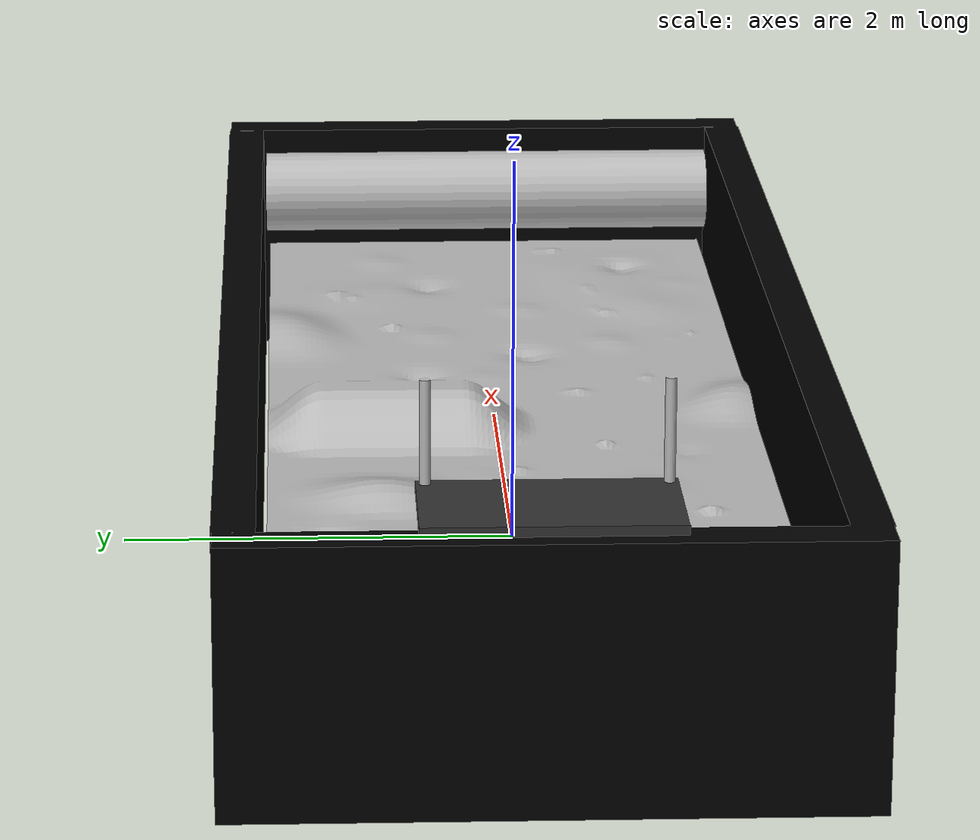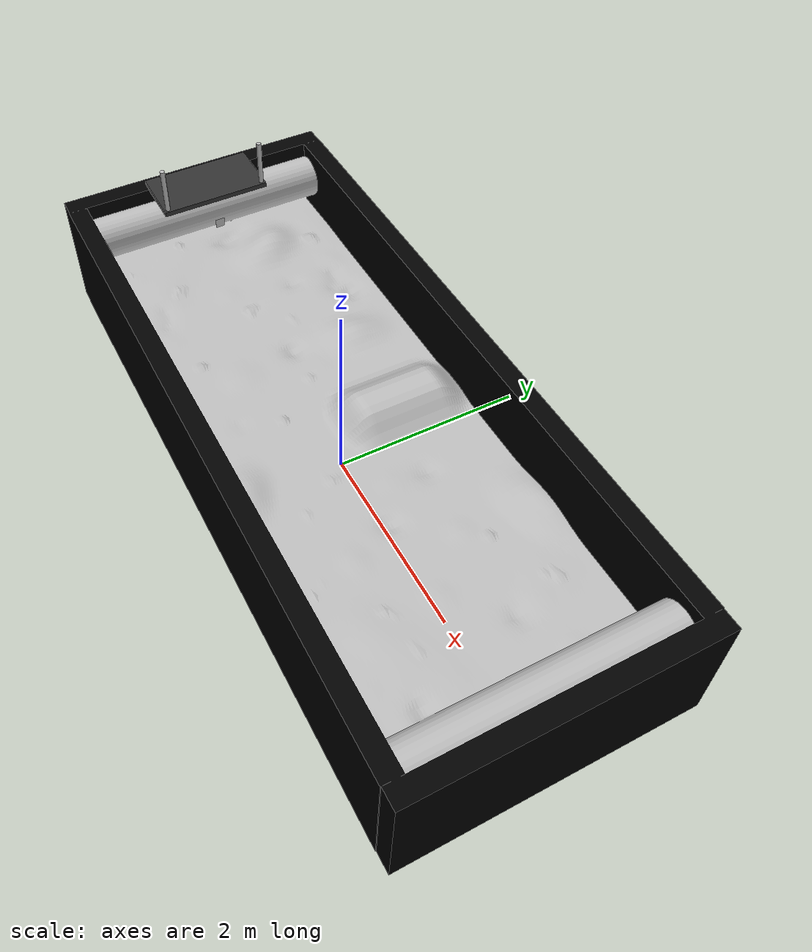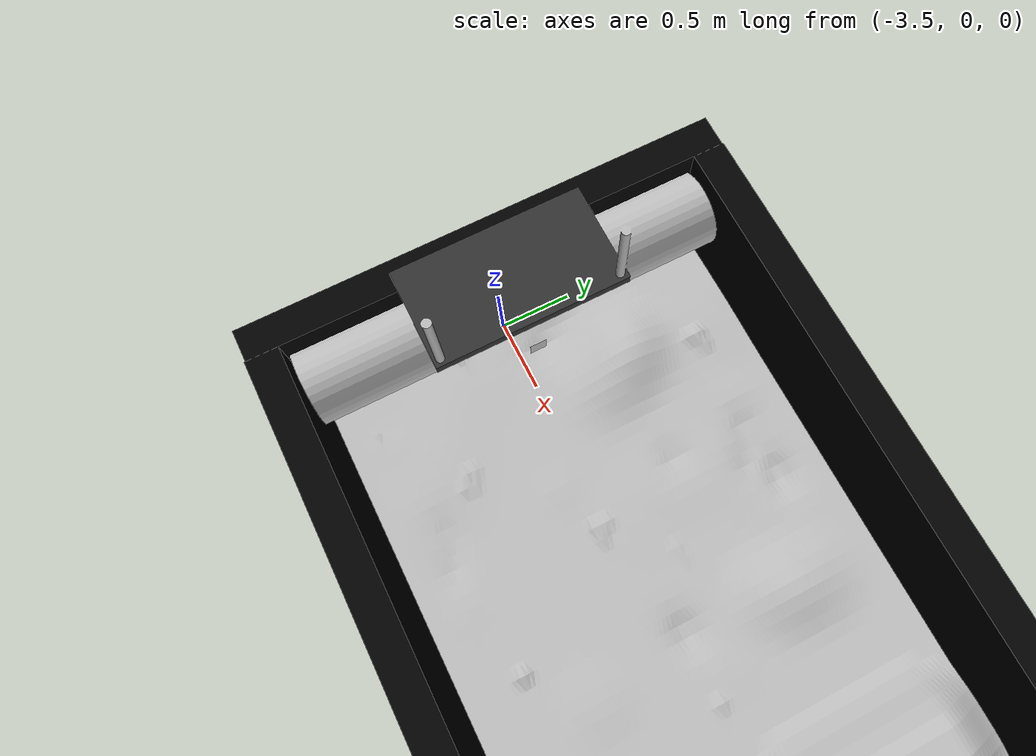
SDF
<sdf version="1.7">
  <world name="default">
    <include>
        <uri>model://sun</uri>
    </include>

    <include>
        <name>lunar_arena</name>
        <uri>model://lunar_arena</uri>
        <pose>0 0 0 0 0 3.1416</pose>
    </include>

    <include>
        <name>apriltag</name>
        <uri>model://Apriltag36_11_00000</uri>
        <pose>-2.9 0 1.0 0 1.57079 0</pose>
    </include>

    <gui fullscreen="0">
        <camera name="user_camera">
            <pose frame="">9.0 -12.0 6.0 0.0 0.3 2.2</pose>
            <view_controller>orbit</view_controller>
            <projection_type>perspective</projection_type>
        </camera>
    </gui>
  </world>
</sdf>

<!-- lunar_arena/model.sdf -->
<sdf version="1.5">
  <model name="lunar_arena">
    <static>1</static>
    <pose>0 0 0 0 0 0</pose>
    <link name="link">
      <visual name="visual">
        <geometry>
          <mesh><uri>model://lunar_arena/meshes/lunar_arena.dae</uri></mesh>
        </geometry>
      </visual>
      <collision name="collision">
        <geometry>
          <mesh><uri>model://lunar_arena/meshes/lunar_arena.dae</uri></mesh>
        </geometry>
      </collision>
    </link>
  </model>
</sdf>

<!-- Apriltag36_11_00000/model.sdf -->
<sdf version='1.6'>
  <model name='Apriltag36_11_00000'>
    <link name="link">
      <inertial>
        <pose>0 0 0 0 0 0</pose>
        <mass>0.5</mass>
        <inertia>
          <ixx>0.0001</ixx>
          <ixy>0</ixy>
          <ixz>0</ixz>
          <iyy>0.0001</iyy>
          <iyz>0</iyz>
          <izz>0.0001</izz>
        </inertia>
      </inertial>
      <collision name="collision">
        <pose>0 0 0 0 0 0</pose>
        <geometry>
          <mesh>
            <uri>model://Apriltag36_11_00000/meshes/tag36_11_00000.dae</uri>
          </mesh>
        </geometry>
        <surface>
          <friction>
            <ode>
              <mu>1.0</mu>
              <mu2>1.0</mu2>
            </ode>
          </friction>
          <contact>
            <ode>
              <kp>10000000.0</kp>
              <kd>1.0</kd>
              <min_depth>0.001</min_depth>
              <max_vel>0.1</max_vel>
            </ode>
          </contact>
        </surface>
      </collision>
      <visual name="visual">
        <pose>0 0 0 0 0 0</pose>
        <geometry>
          <mesh>
            <uri>model://Apriltag36_11_00000/meshes/tag36_11_00000.dae</uri>
          </mesh>
        </geometry>
      </visual>
    </link>
  </model>
</sdf>
